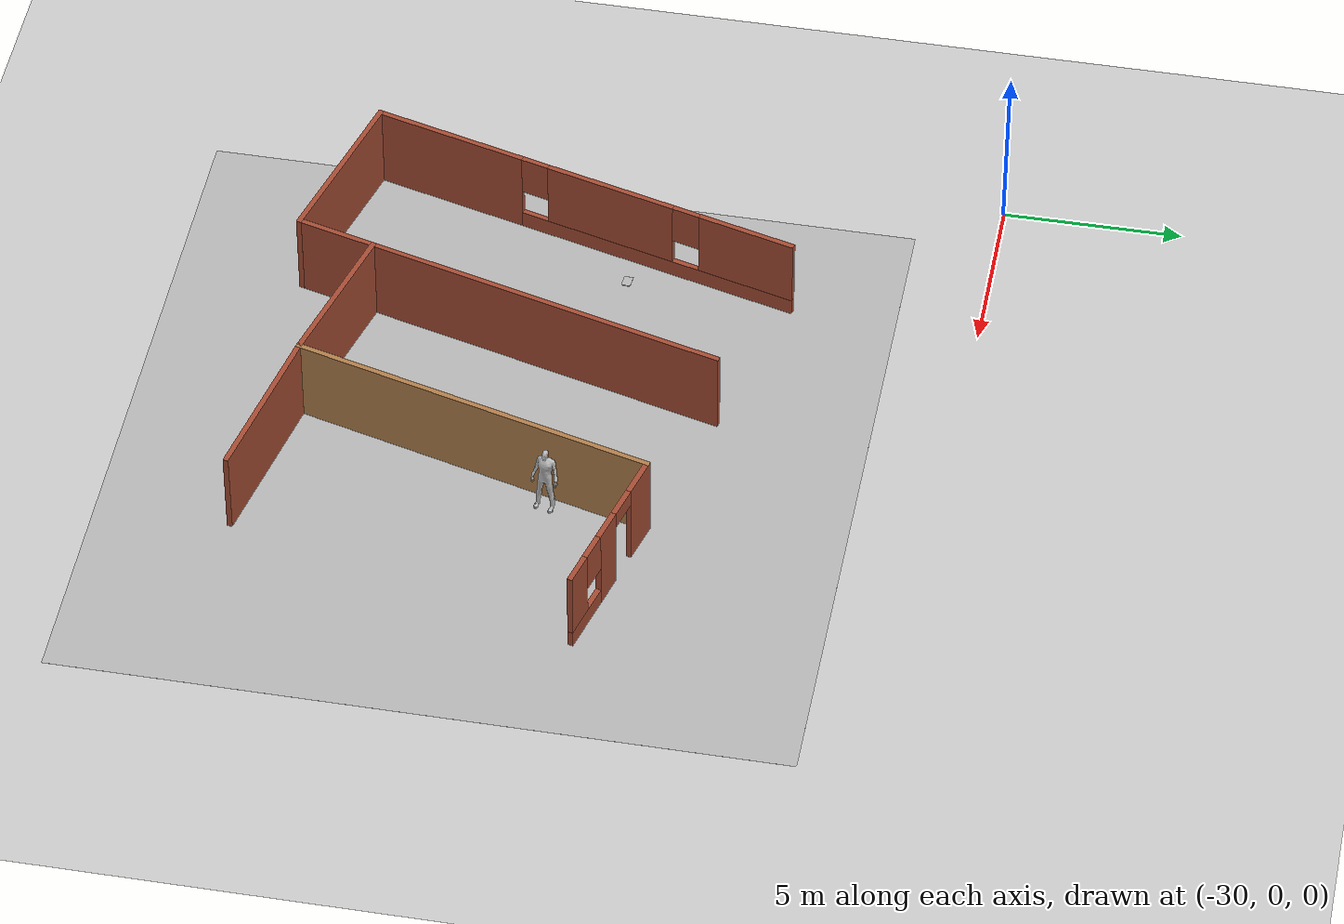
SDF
<sdf version="1.6">
 <world name="default">
  <model name="ground_plane">
   <static>1</static>
   <link name="link">
    <collision name="collision">
     <geometry><plane><normal>0 0 1</normal><size>100 100</size></plane></geometry>
     <surface><friction><ode><mu>100</mu><mu2>50</mu2></ode></friction></surface>
    </collision>
    <visual name="visual">
     <cast_shadows>0</cast_shadows>
     <geometry><plane><normal>0 0 1</normal><size>100 100</size></plane></geometry>
     <material>
      <script><uri>file://media/materials/scripts/gazebo.material</uri><name>Gazebo/Grey</name></script>
     </material>
    </visual>
   </link>
  </model>
  <model name="vital">
   <pose>1.2398 -2.19799 0 0 -0 0</pose>
   <link name="Wall_100">
    <collision name="Wall_100_Collision">
     <geometry><box><size>5 0.15 2.5</size></box></geometry>
     <pose>0 0 1.25 0 -0 0</pose>
    </collision>
    <visual name="Wall_100_Visual">
     <pose>0 0 1.25 0 -0 0</pose>
     <geometry><box><size>5 0.15 2.5</size></box></geometry>
     <material>
      <script><uri>file://media/materials/scripts/gazebo.material</uri><name>Gazebo/Bricks</name></script>
      <ambient>1 1 1 1</ambient>
     </material>
    </visual>
    <pose>-27.234 -15.8492 0 0 -0 2.87979</pose>
   </link>
   <link name="Wall_101">
    <pose>-27.9458 -9.13623 0 0 -0 1.309</pose>
    <visual name="Wall_101_Visual_0">
     <pose>-4.12668 0 1.25 0 -0 0</pose>
     <geometry><box><size>4.49665 0.15 2.5</size></box></geometry>
     <material>
      <script><uri>file://media/materials/scripts/gazebo.material</uri><name>Gazebo/Bricks</name></script>
      <ambient>1 1 1 1</ambient>
     </material>
    </visual>
    <collision name="Wall_101_Collision_0">
     <geometry><box><size>4.49665 0.15 2.5</size></box></geometry>
     <pose>-4.12668 0 1.25 0 -0 0</pose>
    </collision>
    <visual name="Wall_101_Visual_1">
     <pose>2.24832 0 0.25 0 -0 0</pose>
     <geometry><box><size>8.25336 0.15 0.5</size></box></geometry>
     <material>
      <script><uri>file://media/materials/scripts/gazebo.material</uri><name>Gazebo/Bricks</name></script>
      <ambient>1 1 1 1</ambient>
     </material>
    </visual>
    <collision name="Wall_101_Collision_1">
     <geometry><box><size>8.25336 0.15 0.5</size></box></geometry>
     <pose>2.24832 0 0.25 0 -0 0</pose>
    </collision>
    <visual name="Wall_101_Visual_2">
     <pose>0.830511 0 1.5 0 -0 0</pose>
     <geometry><box><size>3.81773 0.15 2</size></box></geometry>
     <material>
      <script><uri>file://media/materials/scripts/gazebo.material</uri><name>Gazebo/Bricks</name></script>
      <ambient>1 1 1 1</ambient>
     </material>
    </visual>
    <collision name="Wall_101_Collision_2">
     <geometry><box><size>3.81773 0.15 2</size></box></geometry>
     <pose>0.830511 0 1.5 0 -0 0</pose>
    </collision>
    <visual name="Wall_101_Visual_3">
     <pose>4.95719 0 1.5 0 -0 0</pose>
     <geometry><box><size>2.83562 0.15 2</size></box></geometry>
     <material>
      <script><uri>file://media/materials/scripts/gazebo.material</uri><name>Gazebo/Bricks</name></script>
      <ambient>1 1 1 1</ambient>
     </material>
    </visual>
    <collision name="Wall_101_Collision_3">
     <geometry><box><size>2.83562 0.15 2</size></box></geometry>
     <pose>4.95719 0 1.5 0 -0 0</pose>
    </collision>
    <visual name="Wall_101_Visual_4">
     <pose>-1.47836 0 1.9 0 -0 0</pose>
     <geometry><box><size>0.8 0.15 1.2</size></box></geometry>
     <material>
      <script><uri>file://media/materials/scripts/gazebo.material</uri><name>Gazebo/Bricks</name></script>
      <ambient>1 1 1 1</ambient>
     </material>
    </visual>
    <collision name="Wall_101_Collision_4">
     <geometry><box><size>0.8 0.15 1.2</size></box></geometry>
     <pose>-1.47836 0 1.9 0 -0 0</pose>
    </collision>
    <visual name="Wall_101_Visual_5">
     <pose>3.13938 0 1.9 0 -0 0</pose>
     <geometry><box><size>0.8 0.15 1.2</size></box></geometry>
     <material>
      <script><uri>file://media/materials/scripts/gazebo.material</uri><name>Gazebo/Bricks</name></script>
      <ambient>1 1 1 1</ambient>
     </material>
    </visual>
    <collision name="Wall_101_Collision_5">
     <geometry><box><size>0.8 0.15 1.2</size></box></geometry>
     <pose>3.13938 0 1.9 0 -0 0</pose>
    </collision>
   </link>
   <link name="Wall_105">
    <collision name="Wall_105_Collision">
     <geometry><box><size>10.5 0.15 2.5</size></box></geometry>
     <pose>0 0 1.25 0 -0 0</pose>
    </collision>
    <visual name="Wall_105_Visual">
     <pose>0 0 1.25 0 -0 0</pose>
     <geometry><box><size>10.5 0.15 2.5</size></box></geometry>
     <material>
      <script><uri>file://media/materials/scripts/gazebo.material</uri><name>Gazebo/Wood</name></script>
      <ambient>1 1 1 1</ambient>
     </material>
    </visual>
    <pose>-18.7682 -10.4307 0 0 0 -1.8326</pose>
   </link>
   <link name="Wall_106">
    <collision name="Wall_106_Collision">
     <geometry><box><size>4.5 0.15 2.5</size></box></geometry>
     <pose>0 0 1.25 0 -0 0</pose>
    </collision>
    <visual name="Wall_106_Visual">
     <pose>0 0 1.25 0 -0 0</pose>
     <geometry><box><size>4.5 0.15 2.5</size></box></geometry>
     <material>
      <script><uri>file://media/materials/scripts/gazebo.material</uri><name>Gazebo/Bricks</name></script>
      <ambient>1 1 1 1</ambient>
     </material>
    </visual>
    <pose>-22.2084 -14.8664 0 0 -0 2.87979</pose>
   </link>
   <link name="Wall_108">
    <pose>-15.2071 -6.02732 0 0 0 -0.261799</pose>
    <visual name="Wall_108_Visual_0">
     <pose>-1.7708 0 1.25 0 -0 0</pose>
     <geometry><box><size>1.2084 0.15 2.5</size></box></geometry>
     <material>
      <script><uri>file://media/materials/scripts/gazebo.material</uri><name>Gazebo/Bricks</name></script>
      <ambient>1 1 1 1</ambient>
     </material>
    </visual>
    <collision name="Wall_108_Collision_0">
     <geometry><box><size>1.2084 0.15 2.5</size></box></geometry>
     <pose>-1.7708 0 1.25 0 -0 0</pose>
    </collision>
    <visual name="Wall_108_Visual_1">
     <pose>0.199682 0 1.25 0 -0 0</pose>
     <geometry><box><size>0.932562 0.15 2.5</size></box></geometry>
     <material>
      <script><uri>file://media/materials/scripts/gazebo.material</uri><name>Gazebo/Bricks</name></script>
      <ambient>1 1 1 1</ambient>
     </material>
    </visual>
    <collision name="Wall_108_Collision_1">
     <geometry><box><size>0.932562 0.15 2.5</size></box></geometry>
     <pose>0.199682 0 1.25 0 -0 0</pose>
    </collision>
    <visual name="Wall_108_Visual_2">
     <pose>1.52048 0 0.25 0 -0 0</pose>
     <geometry><box><size>1.70904 0.15 0.5</size></box></geometry>
     <material>
      <script><uri>file://media/materials/scripts/gazebo.material</uri><name>Gazebo/Bricks</name></script>
      <ambient>1 1 1 1</ambient>
     </material>
    </visual>
    <collision name="Wall_108_Collision_2">
     <geometry><box><size>1.70904 0.15 0.5</size></box></geometry>
     <pose>1.52048 0 0.25 0 -0 0</pose>
    </collision>
    <visual name="Wall_108_Visual_3">
     <pose>1.92048 0 1.5 0 -0 0</pose>
     <geometry><box><size>0.909036 0.15 2</size></box></geometry>
     <material>
      <script><uri>file://media/materials/scripts/gazebo.material</uri><name>Gazebo/Bricks</name></script>
      <ambient>1 1 1 1</ambient>
     </material>
    </visual>
    <collision name="Wall_108_Collision_3">
     <geometry><box><size>0.909036 0.15 2</size></box></geometry>
     <pose>1.92048 0 1.5 0 -0 0</pose>
    </collision>
    <visual name="Wall_108_Visual_4">
     <pose>1.06596 0 1.9 0 -0 0</pose>
     <geometry><box><size>0.8 0.15 1.2</size></box></geometry>
     <material>
      <script><uri>file://media/materials/scripts/gazebo.material</uri><name>Gazebo/Bricks</name></script>
      <ambient>1 1 1 1</ambient>
     </material>
    </visual>
    <collision name="Wall_108_Collision_4">
     <geometry><box><size>0.8 0.15 1.2</size></box></geometry>
     <pose>1.06596 0 1.9 0 -0 0</pose>
    </collision>
    <visual name="Wall_108_Visual_5">
     <pose>-0.716599 0 2.25 0 -0 0</pose>
     <geometry><box><size>0.9 0.15 0.5</size></box></geometry>
     <material>
      <script><uri>file://media/materials/scripts/gazebo.material</uri><name>Gazebo/Bricks</name></script>
      <ambient>1 1 1 1</ambient>
     </material>
    </visual>
    <collision name="Wall_108_Collision_5">
     <geometry><box><size>0.9 0.15 0.5</size></box></geometry>
     <pose>-0.716599 0 2.25 0 -0 0</pose>
    </collision>
   </link>
   <link name="Wall_110">
    <collision name="Wall_110_Collision">
     <geometry><box><size>4.75679 0.15 2.5</size></box></geometry>
     <pose>0 0 1.25 0 -0 0</pose>
    </collision>
    <visual name="Wall_110_Visual">
     <pose>0 0 1.25 0 -0 0</pose>
     <geometry><box><size>4.75679 0.15 2.5</size></box></geometry>
     <material>
      <script><uri>file://media/materials/scripts/gazebo.material</uri><name>Gazebo/Bricks</name></script>
      <ambient>1 1 1 1</ambient>
     </material>
    </visual>
    <pose>-17.8536 -15.9039 0 0 -0 2.93409</pose>
   </link>
   <link name="Wall_99">
    <collision name="Wall_99_Collision">
     <geometry><box><size>12.75 0.15 2.5</size></box></geometry>
     <pose>0 0 1.25 0 -0 0</pose>
    </collision>
    <visual name="Wall_99_Visual">
     <pose>0 0 1.25 0 -0 0</pose>
     <geometry><box><size>12.75 0.15 2.5</size></box></geometry>
     <material>
      <script><uri>file://media/materials/scripts/gazebo.material</uri><name>Gazebo/Bricks</name></script>
      <ambient>1 1 1 1</ambient>
     </material>
    </visual>
    <pose>-23.2611 -10.3915 0 0 0 -1.8326</pose>
   </link>
   <static>1</static>
  </model>
  <model name="Floor_room">
   <link name="main">
    <pose>0 0 0.01 0 -0 0</pose>
    <collision name="main_Collision"><geometry><box><size>20 20 0.001</size></box></geometry></collision>
    <visual name="main_Visual">
     <geometry><box><size>20 20 0.001</size></box></geometry>
     <material>
      <script>
       <uri>model://Floor_room/materials/scripts</uri>
       <uri>model://Floor_room/materials/textures</uri>
       <name>floor_room</name>
      </script>
     </material>
    </visual>
   </link>
   <static>1</static>
   <pose>-18.5658 -12.3006 -0.008855 0 0 -0.001432</pose>
  </model>
  <model name="newspaper_3">
   <link name="link_0">
    <visual name="visual">
     <geometry><box><size>0.35 0.25 0.02</size></box></geometry>
     <material>
      <script>
       <uri>model://newspaper_3/materials/scripts</uri>
       <uri>model://newspaper_3/materials/textures</uri>
       <name>newspaper_3</name>
      </script>
     </material>
    </visual>
    <collision name="collision"><geometry><box><size>0.35 0.25 0.02</size></box></geometry></collision>
   </link>
   <static>1</static>
   <pose>-24.6873 -9.73795 0.7397 0 -0 3.06845</pose>
  </model>
  <model name="tea_box">
   <link name="link">
    <pose>0 0 0.075 0 -0 0</pose>
    <visual name="visual">
     <geometry><box><size>0.1 0.1 0.15</size></box></geometry>
     <material>
      <script>
       <uri>model://tea_box/materials/scripts</uri>
       <uri>model://tea_box/materials/textures</uri>
       <name>tea_pat</name>
      </script>
     </material>
    </visual>
    <collision name="collision"><geometry><box><size>0.1 0.1 0.15</size></box></geometry></collision>
   </link>
   <static>1</static>
   <pose>-24.3546 -15.8997 0.500806 0 0 -0.278855</pose>
  </model>
  <model name="bobeye_0">
   <link name="link">
    <inertial>
     <pose>0 -0.1 0.95 0 -0 0</pose>
     <mass>80</mass>
     <inertia><ixx>14.88</ixx><ixy>0</ixy><ixz>0</ixz><iyy>15.73</iyy><iyz>0</iyz><izz>1.48</izz></inertia>
    </inertial>
    <collision name="bottom">
     <pose>0 0 0.01 0 -0 1.57</pose>
     <geometry><box><size>0.5 0.35 0.02</size></box></geometry>
    </collision>
    <collision name="person">
     <pose>0 0 0.02 0 -0 1.57</pose>
     <geometry><mesh><uri>model://bobeye/meshes/bobeyev2.dae</uri><scale>1 1 1</scale></mesh></geometry>
    </collision>
    <visual name="visual">
     <pose>0 0 0.02 0 -0 1.57</pose>
     <geometry><mesh><uri>model://bobeye/meshes/bobeyev2.dae</uri><scale>1 1 1</scale></mesh></geometry>
    </visual>
   </link>
   <pose>-16.4667 -10.476 0.009905 -3.8e-05 -0.047271 -0.252567</pose>
  </model>
 </world>
</sdf>
